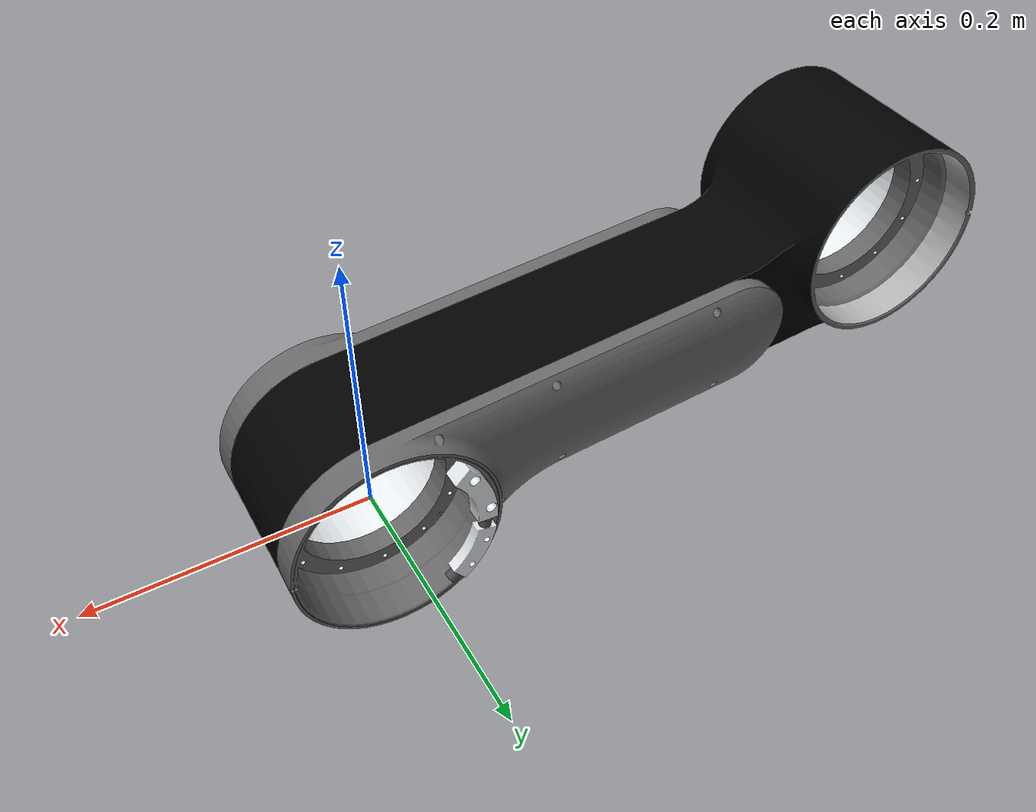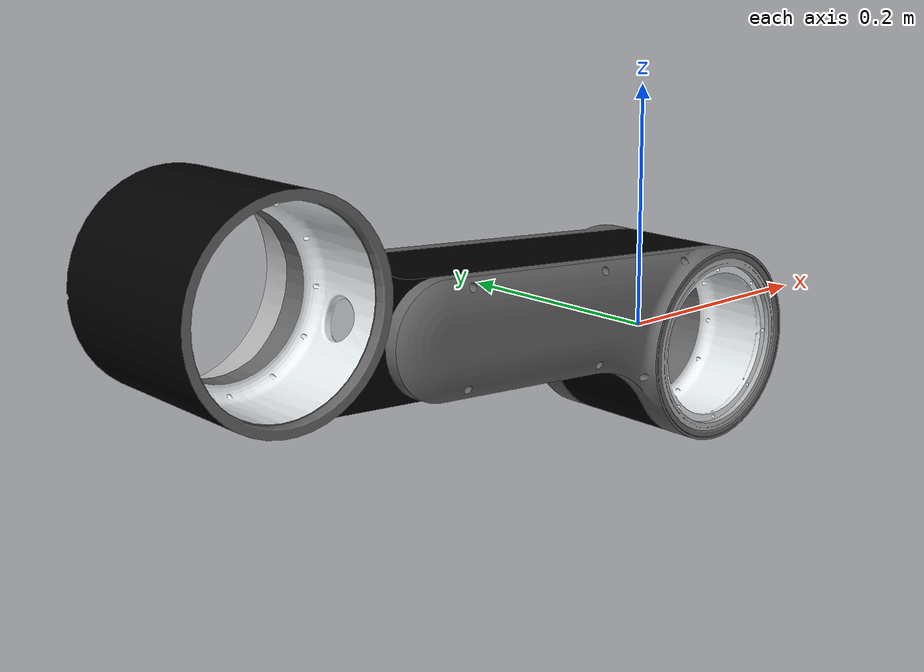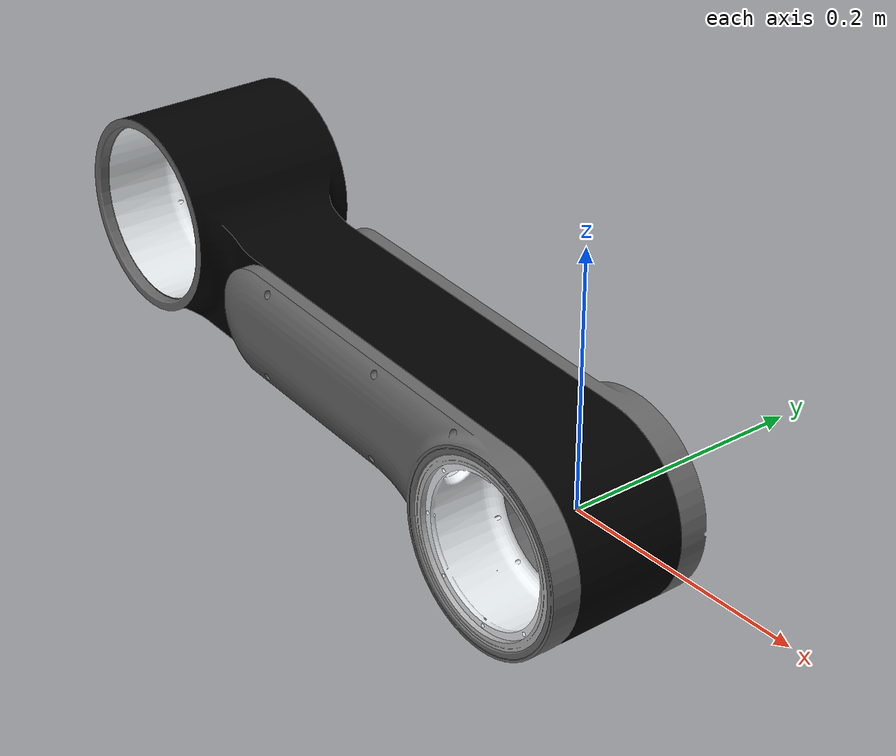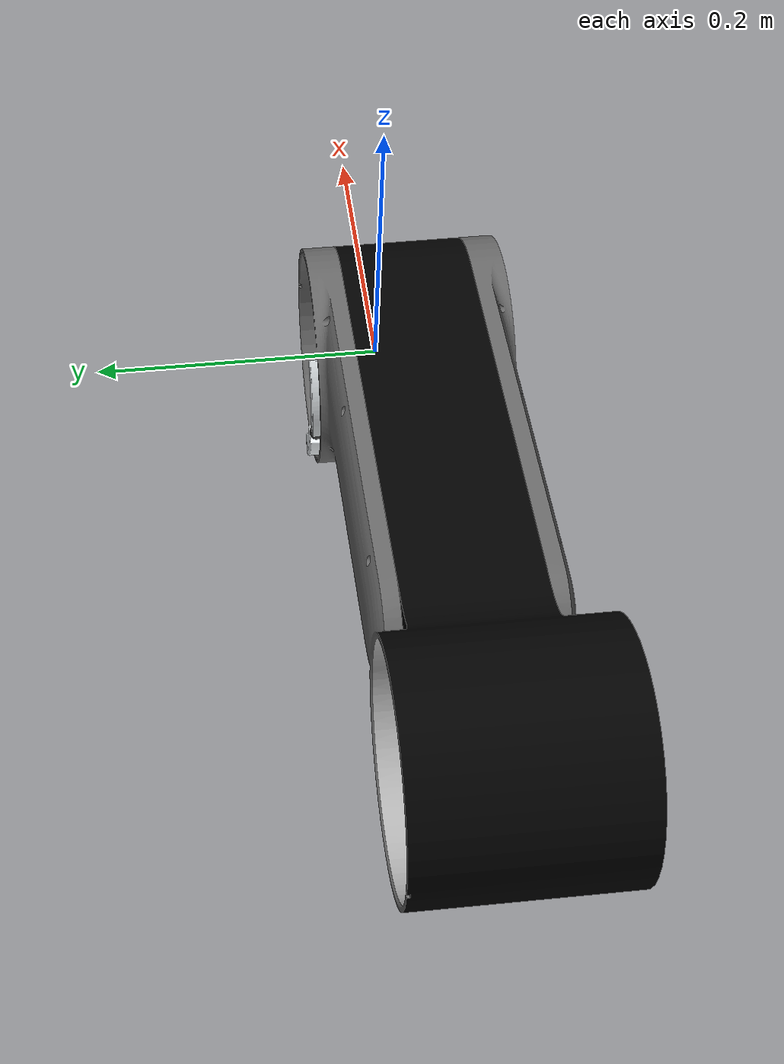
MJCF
<mujoco model="torso_l2">
  <default>
    <default class="visual">
      <geom group="2" type="mesh" contype="0" conaffinity="0"/>
    </default>
    <default class="collision">
      <geom group="3" type="mesh"/>
    </default>
  </default>
  <asset>
    <material name="material_0" specular="0.4000000000000001" shininess="0.001" rgba="0.89803922 0.91764706 0.92941176 1.0"/>
    <material name="material_1" specular="0.4000000000000001" shininess="0.001" rgba="0.40000000 0.40000000 0.40000000 1.0"/>
    <material name="material_2" specular="0.4000000000000001" shininess="0.001" rgba="0.50196078 0.50196078 0.50196078 1.0"/>
    <material name="material_3" specular="0.4000000000000001" shininess="0.001" rgba="0.70588235 0.70588235 0.70588235 1.0"/>
    <material name="material_4" specular="0.4000000000000001" shininess="0.001" rgba="0.25098039 0.25098039 0.25098039 1.0"/>
    <material name="material_5" specular="0.4000000000000001" shininess="0.001" rgba="0.29803922 0.29803922 0.29803922 1.0"/>
    <material name="material_6" specular="0.4000000000000001" shininess="0.001" rgba="0.89019608 0.89019608 0.91372549 1.0"/>
    <material name="material_7" specular="0.4000000000000001" shininess="0.001" rgba="0.64705882 0.61960784 0.58823529 1.0"/>
    <material name="material_8" specular="0.4000000000000001" shininess="0.001" rgba="0.69019608 0.69019608 0.69019608 1.0"/>
    <material name="material_9" specular="0.4000000000000001" shininess="0.001" rgba="0.00000000 0.00000000 0.00000000 1.0"/>
    <mesh file="torso_l2_0.obj"/>
    <mesh file="torso_l2_1.obj"/>
    <mesh file="torso_l2_2.obj"/>
    <mesh file="torso_l2_3.obj"/>
    <mesh file="torso_l2_4.obj"/>
    <mesh file="torso_l2_5.obj"/>
    <mesh file="torso_l2_6.obj"/>
    <mesh file="torso_l2_7.obj"/>
    <mesh file="torso_l2_8.obj"/>
    <mesh file="torso_l2_9.obj"/>
  </asset>
  <worldbody>
    <body name="torso_l2">
      <geom mesh="torso_l2_0" material="material_9" class="visual"/>
      <geom mesh="torso_l2_1" material="material_8" class="visual"/>
      <geom mesh="torso_l2_2" material="material_7" class="visual"/>
      <geom mesh="torso_l2_3" material="material_6" class="visual"/>
      <geom mesh="torso_l2_4" material="material_5" class="visual"/>
      <geom mesh="torso_l2_5" material="material_4" class="visual"/>
      <geom mesh="torso_l2_6" material="material_3" class="visual"/>
      <geom mesh="torso_l2_7" material="material_2" class="visual"/>
      <geom mesh="torso_l2_8" material="material_1" class="visual"/>
      <geom mesh="torso_l2_9" material="material_0" class="visual"/>
    </body>
  </worldbody>
</mujoco>
